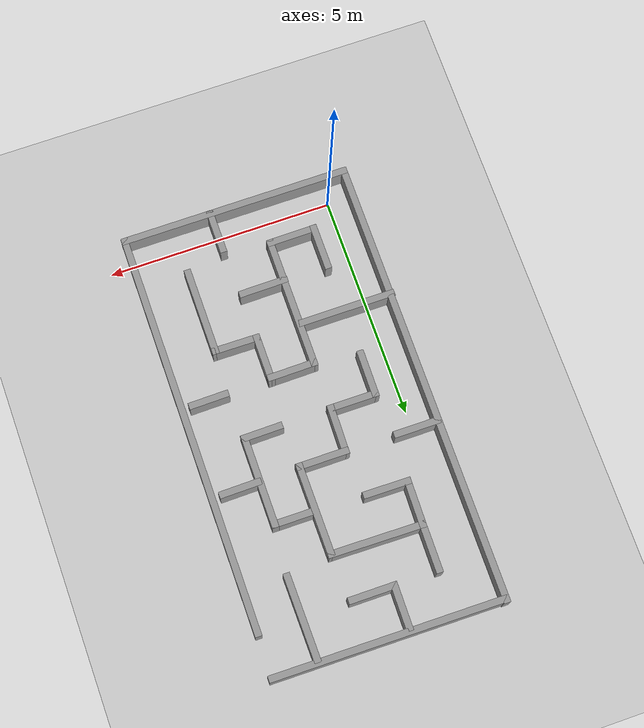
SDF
<sdf version='1.4'>
  <world name='default'>
    <!-- A global light source -->
    <include>
      <uri>model://sun</uri>
    </include>

    <!-- A ground plane -->
    <include>
      <uri>model://ground_plane</uri>
    </include>

    <physics type="ode">
      <real_time_update_rate>1000.0</real_time_update_rate>
      <max_step_size>0.001</max_step_size>
      <real_time_factor>1</real_time_factor>
      <ode>
        <solver>
          <type>quick</type>
          <iters>150</iters>
          <precon_iters>0</precon_iters>
          <sor>1.400000</sor>
          <use_dynamic_moi_rescaling>1</use_dynamic_moi_rescaling>
        </solver>
        <constraints>
          <cfm>0.00001</cfm>
          <erp>0.2</erp>
          <contact_max_correcting_vel>2000.000000</contact_max_correcting_vel>
          <contact_surface_layer>0.01000</contact_surface_layer>
        </constraints>
      </ode>
    </physics>

    <!-- Load world -->
    <include>
      <uri>model://complicated_maze</uri>
    </include>

    <scene>
      <ambient>0.4 0.4 0.4 1</ambient>
      <background>0.7 0.7 0.7 1</background>
      <shadows>true</shadows>
    </scene>

    <gui fullscreen='0'>
      <camera name='user_camera'>
        <pose>0.8 0.0 12.0 0 1.5708 0</pose>
        <view_controller>orbit</view_controller>
      </camera>
    </gui>
  </world>
</sdf>

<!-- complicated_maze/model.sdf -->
<sdf version='1.7'>
  <model name='complicated_maze'>
    <pose> 2.0 4.5 0 0 -0 1.57</pose>
    <link name='Wall_0'>
      <collision name='Wall_0_Collision'>
        <geometry>
          <box>
            <size>10.1 0.15 0.5</size>
          </box>
        </geometry>
        <pose>0 0 0.25 0 -0 0</pose>
      </collision>
      <visual name='Wall_0_Visual'>
        <pose>0 0 0.25 0 -0 0</pose>
        <geometry>
          <box>
            <size>10.1 0.15 0.5</size>
          </box>
        </geometry>
        <material>
          <script>
            <uri>file://media/materials/scripts/gazebo.material</uri>
            <name>Gazebo/Grey</name>
          </script>
          <ambient>1 1 1 1</ambient>
        </material>
        <meta>
          <layer>0</layer>
        </meta>
      </visual>
      <pose>4.2e-05 2.52022 0 0 -0 0</pose>
    </link>
    <link name='Wall_1'>
      <collision name='Wall_1_Collision'>
        <geometry>
          <box>
            <size>5.21009 0.15 0.5</size>
          </box>
        </geometry>
        <pose>0 0 0.25 0 -0 0</pose>
      </collision>
      <visual name='Wall_1_Visual'>
        <pose>0 0 0.25 0 -0 0</pose>
        <geometry>
          <box>
            <size>5.21009 0.15 0.5</size>
          </box>
        </geometry>
        <material>
          <script>
            <uri>file://media/materials/scripts/gazebo.material</uri>
            <name>Gazebo/Grey</name>
          </script>
          <ambient>1 1 1 1</ambient>
        </material>
        <meta>
          <layer>0</layer>
        </meta>
      </visual>
      <pose>4.94004 -0.009778 0 0 -0 -1.57672</pose>
    </link>
    <link name='Wall_10'>
      <collision name='Wall_10_Collision'>
        <geometry>
          <box>
            <size>1 0.15 0.5</size>
          </box>
        </geometry>
        <pose>0 0 0.25 0 -0 0</pose>
      </collision>
      <visual name='Wall_10_Visual'>
        <pose>0 0 0.25 0 -0 0</pose>
        <geometry>
          <box>
            <size>1 0.15 0.5</size>
          </box>
        </geometry>
        <material>
          <script>
            <uri>file://media/materials/scripts/gazebo.material</uri>
            <name>Gazebo/Grey</name>
          </script>
          <ambient>1 1 1 1</ambient>
        </material>
        <meta>
          <layer>0</layer>
        </meta>
      </visual>
      <pose>-4.53996 -0.559778 0 0 -0 0</pose>
    </link>
    <link name='Wall_23'>
      <collision name='Wall_23_Collision'>
        <geometry>
          <box>
            <size>1.05 0.15 0.5</size>
          </box>
        </geometry>
        <pose>0 0 0.25 0 -0 0</pose>
      </collision>
      <visual name='Wall_23_Visual'>
        <pose>0 0 0.25 0 -0 0</pose>
        <geometry>
          <box>
            <size>1.05 0.15 0.5</size>
          </box>
        </geometry>
        <material>
          <script>
            <uri>file://media/materials/scripts/gazebo.material</uri>
            <name>Gazebo/Grey</name>
          </script>
          <ambient>1 1 1 1</ambient>
        </material>
        <meta>
          <layer>0</layer>
        </meta>
      </visual>
      <pose>-3.47496 1.46022 0 0 -0 3.14159</pose>
    </link>
    <link name='Wall_25'>
      <collision name='Wall_25_Collision'>
        <geometry>
          <box>
            <size>1.15005 0.15 0.5</size>
          </box>
        </geometry>
        <pose>0 0 0.25 0 -0 0</pose>
      </collision>
      <visual name='Wall_25_Visual'>
        <pose>0 0 0.25 0 -0 0</pose>
        <geometry>
          <box>
            <size>1.15005 0.15 0.5</size>
          </box>
        </geometry>
        <material>
          <script>
            <uri>file://media/materials/scripts/gazebo.material</uri>
            <name>Gazebo/Grey</name>
          </script>
          <ambient>1 1 1 1</ambient>
        </material>
        <meta>
          <layer>0</layer>
        </meta>
      </visual>
      <pose>-3.91996 0.960222 0 0 -0 -1.5608</pose>
    </link>
    <link name='Wall_26'>
      <collision name='Wall_26_Collision'>
        <geometry>
          <box>
            <size>3 0.15 0.5</size>
          </box>
        </geometry>
        <pose>0 0 0.25 0 -0 0</pose>
      </collision>
      <visual name='Wall_26_Visual'>
        <pose>0 0 0.25 0 -0 0</pose>
        <geometry>
          <box>
            <size>3 0.15 0.5</size>
          </box>
        </geometry>
        <material>
          <script>
            <uri>file://media/materials/scripts/gazebo.material</uri>
            <name>Gazebo/Grey</name>
          </script>
          <ambient>1 1 1 1</ambient>
        </material>
        <meta>
          <layer>0</layer>
        </meta>
      </visual>
      <pose>-2.48996 0.460222 0 0 -0 0</pose>
    </link>
    <link name='Wall_27'>
      <collision name='Wall_27_Collision'>
        <geometry>
          <box>
            <size>1.12005 0.15 0.5</size>
          </box>
        </geometry>
        <pose>0 0 0.25 0 -0 0</pose>
      </collision>
      <visual name='Wall_27_Visual'>
        <pose>0 0 0.25 0 -0 0</pose>
        <geometry>
          <box>
            <size>1.12005 0.15 0.5</size>
          </box>
        </geometry>
        <material>
          <script>
            <uri>file://media/materials/scripts/gazebo.material</uri>
            <name>Gazebo/Grey</name>
          </script>
          <ambient>1 1 1 1</ambient>
        </material>
        <meta>
          <layer>0</layer>
        </meta>
      </visual>
      <pose>-1.05996 -0.024778 0 0 -0 -1.56049</pose>
    </link>
    <link name='Wall_28'>
      <collision name='Wall_28_Collision'>
        <geometry>
          <box>
            <size>1.08 0.15 0.5</size>
          </box>
        </geometry>
        <pose>0 0 0.25 0 -0 0</pose>
      </collision>
      <visual name='Wall_28_Visual'>
        <pose>0 0 0.25 0 -0 0</pose>
        <geometry>
          <box>
            <size>1.08 0.15 0.5</size>
          </box>
        </geometry>
        <material>
          <script>
            <uri>file://media/materials/scripts/gazebo.material</uri>
            <name>Gazebo/Grey</name>
          </script>
          <ambient>1 1 1 1</ambient>
        </material>
        <meta>
          <layer>0</layer>
        </meta>
      </visual>
      <pose>-1.51996 -0.509778 0 0 -0 3.14159</pose>
    </link>
    <link name='Wall_29'>
      <collision name='Wall_29_Collision'>
        <geometry>
          <box>
            <size>1.08005 0.15 0.5</size>
          </box>
        </geometry>
        <pose>0 0 0.25 0 -0 0</pose>
      </collision>
      <visual name='Wall_29_Visual'>
        <pose>0 0 0.25 0 -0 0</pose>
        <geometry>
          <box>
            <size>1.08005 0.15 0.5</size>
          </box>
        </geometry>
        <material>
          <script>
            <uri>file://media/materials/scripts/gazebo.material</uri>
            <name>Gazebo/Grey</name>
          </script>
          <ambient>1 1 1 1</ambient>
        </material>
        <meta>
          <layer>0</layer>
        </meta>
      </visual>
      <pose>-1.98996 -0.974778 0 0 -0 -1.58155</pose>
    </link>
    <link name='Wall_3'>
      <collision name='Wall_3_Collision'>
        <geometry>
          <box>
            <size>5.18 0.15 0.5</size>
          </box>
        </geometry>
        <pose>0 0 0.25 0 -0 0</pose>
      </collision>
      <visual name='Wall_3_Visual'>
        <pose>0 0 0.25 0 -0 0</pose>
        <geometry>
          <box>
            <size>5.18 0.15 0.5</size>
          </box>
        </geometry>
        <material>
          <script>
            <uri>file://media/materials/scripts/gazebo.material</uri>
            <name>Gazebo/Grey</name>
          </script>
          <ambient>1 1 1 1</ambient>
        </material>
        <meta>
          <layer>0</layer>
        </meta>
      </visual>
      <pose>-4.97496 0.005222 0 0 -0 1.5708</pose>
    </link>
    <link name='Wall_30'>
      <collision name='Wall_30_Collision'>
        <geometry>
          <box>
            <size>2 0.15 0.5</size>
          </box>
        </geometry>
        <pose>0 0 0.25 0 -0 0</pose>
      </collision>
      <visual name='Wall_30_Visual'>
        <pose>0 0 0.25 0 -0 0</pose>
        <geometry>
          <box>
            <size>2 0.15 0.5</size>
          </box>
        </geometry>
        <material>
          <script>
            <uri>file://media/materials/scripts/gazebo.material</uri>
            <name>Gazebo/Grey</name>
          </script>
          <ambient>1 1 1 1</ambient>
        </material>
        <meta>
          <layer>0</layer>
        </meta>
      </visual>
      <pose>-2.91996 -1.43978 0 0 -0 3.14159</pose>
    </link>
    <link name='Wall_32'>
      <collision name='Wall_32_Collision'>
        <geometry>
          <box>
            <size>1.10005 0.15 0.5</size>
          </box>
        </geometry>
        <pose>0 0 0.25 0 -0 0</pose>
      </collision>
      <visual name='Wall_32_Visual'>
        <pose>0 0 0.25 0 -0 0</pose>
        <geometry>
          <box>
            <size>1.10005 0.15 0.5</size>
          </box>
        </geometry>
        <material>
          <script>
            <uri>file://media/materials/scripts/gazebo.material</uri>
            <name>Gazebo/Grey</name>
          </script>
          <ambient>1 1 1 1</ambient>
        </material>
        <meta>
          <layer>0</layer>
        </meta>
      </visual>
      <pose>-3.01996 -0.004778 0 0 -0 -1.56027</pose>
    </link>
    <link name='Wall_34'>
      <collision name='Wall_34_Collision'>
        <geometry>
          <box>
            <size>2.2 0.15 0.5</size>
          </box>
        </geometry>
        <pose>0 0 0.25 0 -0 0</pose>
      </collision>
      <visual name='Wall_34_Visual'>
        <pose>0 0 0.25 0 -0 0</pose>
        <geometry>
          <box>
            <size>2.2 0.15 0.5</size>
          </box>
        </geometry>
        <material>
          <script>
            <uri>file://media/materials/scripts/gazebo.material</uri>
            <name>Gazebo/Grey</name>
          </script>
          <ambient>1 1 1 1</ambient>
        </material>
        <meta>
          <layer>0</layer>
        </meta>
      </visual>
      <pose>-1.98496 1.51522 0 0 -0 -1.5708</pose>
    </link>
    <link name='Wall_36'>
      <collision name='Wall_36_Collision'>
        <geometry>
          <box>
            <size>1.07022 0.15 0.5</size>
          </box>
        </geometry>
        <pose>0 0 0.25 0 -0 0</pose>
      </collision>
      <visual name='Wall_36_Visual'>
        <pose>0 0 0.25 0 -0 0</pose>
        <geometry>
          <box>
            <size>1.07022 0.15 0.5</size>
          </box>
        </geometry>
        <material>
          <script>
            <uri>file://media/materials/scripts/gazebo.material</uri>
            <name>Gazebo/Grey</name>
          </script>
          <ambient>1 1 1 1</ambient>
        </material>
        <meta>
          <layer>0</layer>
        </meta>
      </visual>
      <pose>-0.464958 1.46522 0 0 -0 -0.010869</pose>
    </link>
    <link name='Wall_37'>
      <collision name='Wall_37_Collision'>
        <geometry>
          <box>
            <size>1.14 0.15 0.5</size>
          </box>
        </geometry>
        <pose>0 0 0.25 0 -0 0</pose>
      </collision>
      <visual name='Wall_37_Visual'>
        <pose>0 0 0.25 0 -0 0</pose>
        <geometry>
          <box>
            <size>1.14 0.15 0.5</size>
          </box>
        </geometry>
        <material>
          <script>
            <uri>file://media/materials/scripts/gazebo.material</uri>
            <name>Gazebo/Grey</name>
          </script>
          <ambient>1 1 1 1</ambient>
        </material>
        <meta>
          <layer>0</layer>
        </meta>
      </visual>
      <pose>-0.004958 0.965222 0 0 -0 -1.5708</pose>
    </link>
    <link name='Wall_38'>
      <collision name='Wall_38_Collision'>
        <geometry>
          <box>
            <size>1.12046 0.15 0.5</size>
          </box>
        </geometry>
        <pose>0 0 0.25 0 -0 0</pose>
      </collision>
      <visual name='Wall_38_Visual'>
        <pose>0 0 0.25 0 -0 0</pose>
        <geometry>
          <box>
            <size>1.12046 0.15 0.5</size>
          </box>
        </geometry>
        <material>
          <script>
            <uri>file://media/materials/scripts/gazebo.material</uri>
            <name>Gazebo/Grey</name>
          </script>
          <ambient>1 1 1 1</ambient>
        </material>
        <meta>
          <layer>0</layer>
        </meta>
      </visual>
      <pose>0.480042 0.460222 0 0 -0 -0.020616</pose>
    </link>
    <link name='Wall_39'>
      <collision name='Wall_39_Collision'>
        <geometry>
          <box>
            <size>1.17 0.15 0.5</size>
          </box>
        </geometry>
        <pose>0 0 0.25 0 -0 0</pose>
      </collision>
      <visual name='Wall_39_Visual'>
        <pose>0 0 0.25 0 -0 0</pose>
        <geometry>
          <box>
            <size>1.17 0.15 0.5</size>
          </box>
        </geometry>
        <material>
          <script>
            <uri>file://media/materials/scripts/gazebo.material</uri>
            <name>Gazebo/Grey</name>
          </script>
          <ambient>1 1 1 1</ambient>
        </material>
        <meta>
          <layer>0</layer>
        </meta>
      </visual>
      <pose>0.965042 -0.059778 0 0 -0 -1.5708</pose>
    </link>
    <link name='Wall_42'>
      <collision name='Wall_42_Collision'>
        <geometry>
          <box>
            <size>2.11003 0.15 0.5</size>
          </box>
        </geometry>
        <pose>0 0 0.25 0 -0 0</pose>
      </collision>
      <visual name='Wall_42_Visual'>
        <pose>0 0 0.25 0 -0 0</pose>
        <geometry>
          <box>
            <size>2.11003 0.15 0.5</size>
          </box>
        </geometry>
        <material>
          <script>
            <uri>file://media/materials/scripts/gazebo.material</uri>
            <name>Gazebo/Grey</name>
          </script>
          <ambient>1 1 1 1</ambient>
        </material>
        <meta>
          <layer>0</layer>
        </meta>
      </visual>
      <pose>1.94504 -0.564778 0 0 -0 0.005102</pose>
    </link>
    <link name='Wall_43'>
      <collision name='Wall_43_Collision'>
        <geometry>
          <box>
            <size>2.15022 0.15 0.5</size>
          </box>
        </geometry>
        <pose>0 0 0.25 0 -0 0</pose>
      </collision>
      <visual name='Wall_43_Visual'>
        <pose>0 0 0.25 0 -0 0</pose>
        <geometry>
          <box>
            <size>2.15022 0.15 0.5</size>
          </box>
        </geometry>
        <material>
          <script>
            <uri>file://media/materials/scripts/gazebo.material</uri>
            <name>Gazebo/Grey</name>
          </script>
          <ambient>1 1 1 1</ambient>
        </material>
        <meta>
          <layer>0</layer>
        </meta>
      </visual>
      <pose>2.94004 0.440222 0 0 -0 1.5558</pose>
    </link>
    <link name='Wall_44'>
      <collision name='Wall_44_Collision'>
        <geometry>
          <box>
            <size>1.1402 0.15 0.5</size>
          </box>
        </geometry>
        <pose>0 0 0.25 0 -0 0</pose>
      </collision>
      <visual name='Wall_44_Visual'>
        <pose>0 0 0.25 0 -0 0</pose>
        <geometry>
          <box>
            <size>1.1402 0.15 0.5</size>
          </box>
        </geometry>
        <material>
          <script>
            <uri>file://media/materials/scripts/gazebo.material</uri>
            <name>Gazebo/Grey</name>
          </script>
          <ambient>1 1 1 1</ambient>
        </material>
        <meta>
          <layer>0</layer>
        </meta>
      </visual>
      <pose>3.45004 1.43522 0 0 -0 -0.010101</pose>
    </link>
    <link name='Wall_46'>
      <collision name='Wall_46_Collision'>
        <geometry>
          <box>
            <size>1.11021 0.15 0.5</size>
          </box>
        </geometry>
        <pose>0 0 0.25 0 -0 0</pose>
      </collision>
      <visual name='Wall_46_Visual'>
        <pose>0 0 0.25 0 -0 0</pose>
        <geometry>
          <box>
            <size>1.11021 0.15 0.5</size>
          </box>
        </geometry>
        <material>
          <script>
            <uri>file://media/materials/scripts/gazebo.material</uri>
            <name>Gazebo/Grey</name>
          </script>
          <ambient>1 1 1 1</ambient>
        </material>
        <meta>
          <layer>0</layer>
        </meta>
      </visual>
      <pose>2.47504 1.45022 0 0 -0 3.12076</pose>
    </link>
    <link name='Wall_47'>
      <collision name='Wall_47_Collision'>
        <geometry>
          <box>
            <size>1.06005 0.15 0.5</size>
          </box>
        </geometry>
        <pose>0 0 0.25 0 -0 0</pose>
      </collision>
      <visual name='Wall_47_Visual'>
        <pose>0 0 0.25 0 -0 0</pose>
        <geometry>
          <box>
            <size>1.06005 0.15 0.5</size>
          </box>
        </geometry>
        <material>
          <script>
            <uri>file://media/materials/scripts/gazebo.material</uri>
            <name>Gazebo/Grey</name>
          </script>
          <ambient>1 1 1 1</ambient>
        </material>
        <meta>
          <layer>0</layer>
        </meta>
      </visual>
      <pose>1.99004 1.00522 0 0 -0 -1.58178</pose>
    </link>
    <link name='Wall_49'>
      <collision name='Wall_49_Collision'>
        <geometry>
          <box>
            <size>1.04006 0.15 0.5</size>
          </box>
        </geometry>
        <pose>0 0 0.25 0 -0 0</pose>
      </collision>
      <visual name='Wall_49_Visual'>
        <pose>0 0 0.25 0 -0 0</pose>
        <geometry>
          <box>
            <size>1.04006 0.15 0.5</size>
          </box>
        </geometry>
        <material>
          <script>
            <uri>file://media/materials/scripts/gazebo.material</uri>
            <name>Gazebo/Grey</name>
          </script>
          <ambient>1 1 1 1</ambient>
        </material>
        <meta>
          <layer>0</layer>
        </meta>
      </visual>
      <pose>0.975042 2.04522 0 0 -0 -1.5708</pose>
    </link>
    <link name='Wall_51'>
      <collision name='Wall_51_Collision'>
        <geometry>
          <box>
            <size>1.06 0.15 0.5</size>
          </box>
        </geometry>
        <pose>0 0 0.25 0 -0 0</pose>
      </collision>
      <visual name='Wall_51_Visual'>
        <pose>0 0 0.25 0 -0 0</pose>
        <geometry>
          <box>
            <size>1.06 0.15 0.5</size>
          </box>
        </geometry>
        <material>
          <script>
            <uri>file://media/materials/scripts/gazebo.material</uri>
            <name>Gazebo/Grey</name>
          </script>
          <ambient>1 1 1 1</ambient>
        </material>
        <meta>
          <layer>0</layer>
        </meta>
      </visual>
      <pose>4.41004 0.445222 0 0 -0 3.1306</pose>
    </link>
    <link name='Wall_52'>
      <collision name='Wall_52_Collision'>
        <geometry>
          <box>
            <size>1.08 0.15 0.5</size>
          </box>
        </geometry>
        <pose>0 0 0.25 0 -0 0</pose>
      </collision>
      <visual name='Wall_52_Visual'>
        <pose>0 0 0.25 0 -0 0</pose>
        <geometry>
          <box>
            <size>1.08 0.15 0.5</size>
          </box>
        </geometry>
        <material>
          <script>
            <uri>file://media/materials/scripts/gazebo.material</uri>
            <name>Gazebo/Grey</name>
          </script>
          <ambient>1 1 1 1</ambient>
        </material>
        <meta>
          <layer>0</layer>
        </meta>
      </visual>
      <pose>3.95504 -0.014778 0 0 -0 -1.5708</pose>
    </link>
    <link name='Wall_54'>
      <collision name='Wall_54_Collision'>
        <geometry>
          <box>
            <size>1.04 0.15 0.5</size>
          </box>
        </geometry>
        <pose>0 0 0.25 0 -0 0</pose>
      </collision>
      <visual name='Wall_54_Visual'>
        <pose>0 0 0.25 0 -0 0</pose>
        <geometry>
          <box>
            <size>1.04 0.15 0.5</size>
          </box>
        </geometry>
        <material>
          <script>
            <uri>file://media/materials/scripts/gazebo.material</uri>
            <name>Gazebo/Grey</name>
          </script>
          <ambient>1 1 1 1</ambient>
        </material>
        <meta>
          <layer>0</layer>
        </meta>
      </visual>
      <pose>1.95504 -1.01478 0 0 -0 -1.5708</pose>
    </link>
    <link name='Wall_55'>
      <collision name='Wall_55_Collision'>
        <geometry>
          <box>
            <size>2.09003 0.15 0.5</size>
          </box>
        </geometry>
        <pose>0 0 0.25 0 -0 0</pose>
      </collision>
      <visual name='Wall_55_Visual'>
        <pose>0 0 0.25 0 -0 0</pose>
        <geometry>
          <box>
            <size>2.09003 0.15 0.5</size>
          </box>
        </geometry>
        <material>
          <script>
            <uri>file://media/materials/scripts/gazebo.material</uri>
            <name>Gazebo/Grey</name>
          </script>
          <ambient>1 1 1 1</ambient>
        </material>
        <meta>
          <layer>0</layer>
        </meta>
      </visual>
      <pose>0.985042 -1.45978 0 0 -0 3.14159</pose>
    </link>
    <link name='Wall_56'>
      <collision name='Wall_56_Collision'>
        <geometry>
          <box>
            <size>0.92 0.15 0.5</size>
          </box>
        </geometry>
        <pose>0 0 0.25 0 -0 0</pose>
      </collision>
      <visual name='Wall_56_Visual'>
        <pose>0 0 0.25 0 -0 0</pose>
        <geometry>
          <box>
            <size>0.92 0.15 0.5</size>
          </box>
        </geometry>
        <material>
          <script>
            <uri>file://media/materials/scripts/gazebo.material</uri>
            <name>Gazebo/Grey</name>
          </script>
          <ambient>1 1 1 1</ambient>
        </material>
        <meta>
          <layer>0</layer>
        </meta>
      </visual>
      <pose>0.010042 -1.07478 0 0 -0 1.58378</pose>
    </link>
    <link name='Wall_58'>
      <collision name='Wall_58_Collision'>
        <geometry>
          <box>
            <size>0.93 0.15 0.5</size>
          </box>
        </geometry>
        <pose>0 0 0.25 0 -0 0</pose>
      </collision>
      <visual name='Wall_58_Visual'>
        <pose>0 0 0.25 0 -0 0</pose>
        <geometry>
          <box>
            <size>0.93 0.15 0.5</size>
          </box>
        </geometry>
        <material>
          <script>
            <uri>file://media/materials/scripts/gazebo.material</uri>
            <name>Gazebo/Grey</name>
          </script>
          <ambient>1 1 1 1</ambient>
        </material>
        <meta>
          <layer>0</layer>
        </meta>
      </visual>
      <pose>1.00004 -1.88978 0 0 -0 -1.55798</pose>
    </link>
    <link name='Wall_60'>
      <collision name='Wall_60_Collision'>
        <geometry>
          <box>
            <size>0.890068 0.15 0.5</size>
          </box>
        </geometry>
        <pose>0 0 0.25 0 -0 0</pose>
      </collision>
      <visual name='Wall_60_Visual'>
        <pose>0 0 0.25 0 -0 0</pose>
        <geometry>
          <box>
            <size>0.890068 0.15 0.5</size>
          </box>
        </geometry>
        <material>
          <script>
            <uri>file://media/materials/scripts/gazebo.material</uri>
            <name>Gazebo/Grey</name>
          </script>
          <ambient>1 1 1 1</ambient>
        </material>
        <meta>
          <layer>0</layer>
        </meta>
      </visual>
      <pose>-1.01996 -1.90978 0 0 -0 -1.55728</pose>
    </link>
    <link name='Wall_62'>
      <collision name='Wall_62_Collision'>
        <geometry>
          <box>
            <size>1.94025 0.15 0.5</size>
          </box>
        </geometry>
        <pose>0 0 0.25 0 -0 0</pose>
      </collision>
      <visual name='Wall_62_Visual'>
        <pose>0 0 0.25 0 -0 0</pose>
        <geometry>
          <box>
            <size>1.94025 0.15 0.5</size>
          </box>
        </geometry>
        <material>
          <script>
            <uri>file://media/materials/scripts/gazebo.material</uri>
            <name>Gazebo/Grey</name>
          </script>
          <ambient>1 1 1 1</ambient>
        </material>
        <meta>
          <layer>0</layer>
        </meta>
      </visual>
      <pose>3.96004 -1.55978 0 0 -0 -3.13042</pose>
    </link>
    <link name='Wall_65'>
      <collision name='Wall_65_Collision'>
        <geometry>
          <box>
            <size>9.09001 0.15 0.5</size>
          </box>
        </geometry>
        <pose>0 0 0.25 0 -0 0</pose>
      </collision>
      <visual name='Wall_65_Visual'>
        <pose>0 0 0.25 0 -0 0</pose>
        <geometry>
          <box>
            <size>9.09001 0.15 0.5</size>
          </box>
        </geometry>
        <material>
          <script>
            <uri>file://media/materials/scripts/gazebo.material</uri>
            <name>Gazebo/Grey</name>
          </script>
          <ambient>1 1 1 1</ambient>
        </material>
        <meta>
          <layer>0</layer>
        </meta>
      </visual>
      <pose>-0.504958 -2.51478 0 0 -0 -0.001119</pose>
    </link>
    <static>1</static>
  </model>
</sdf>
